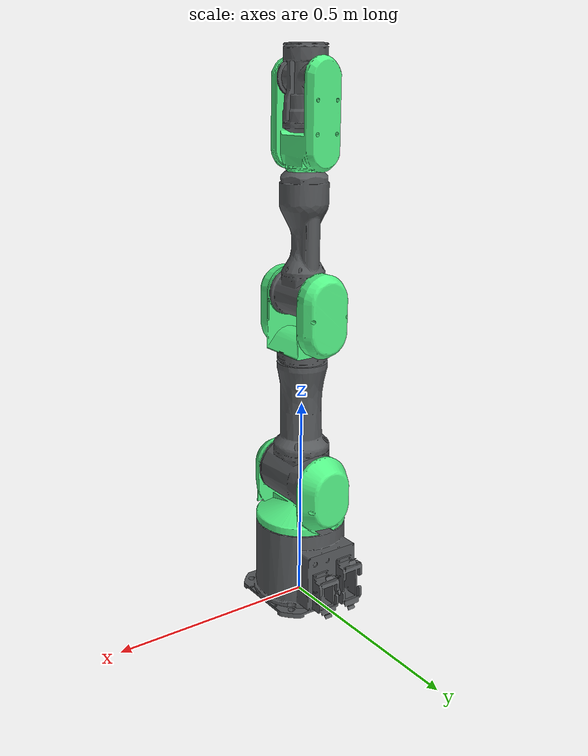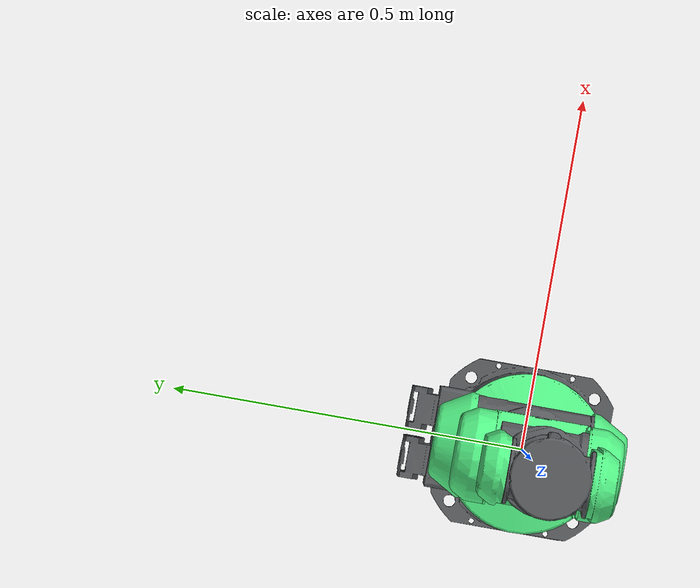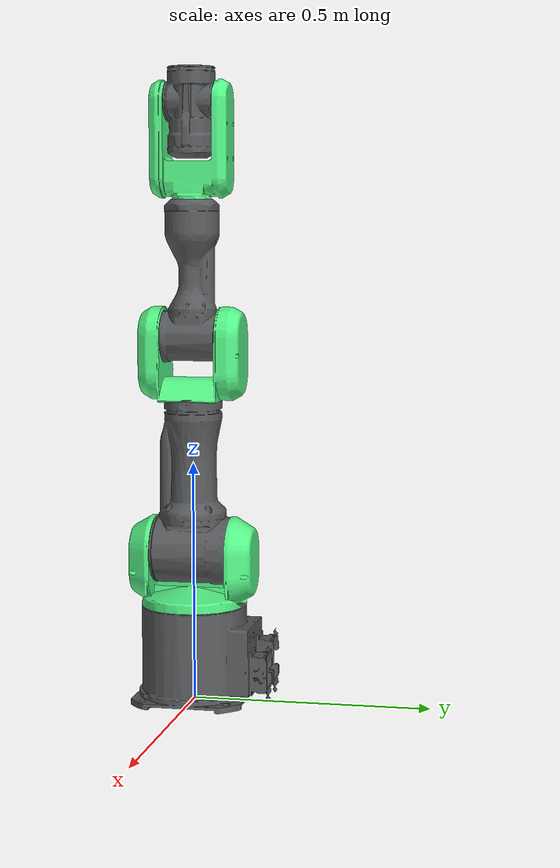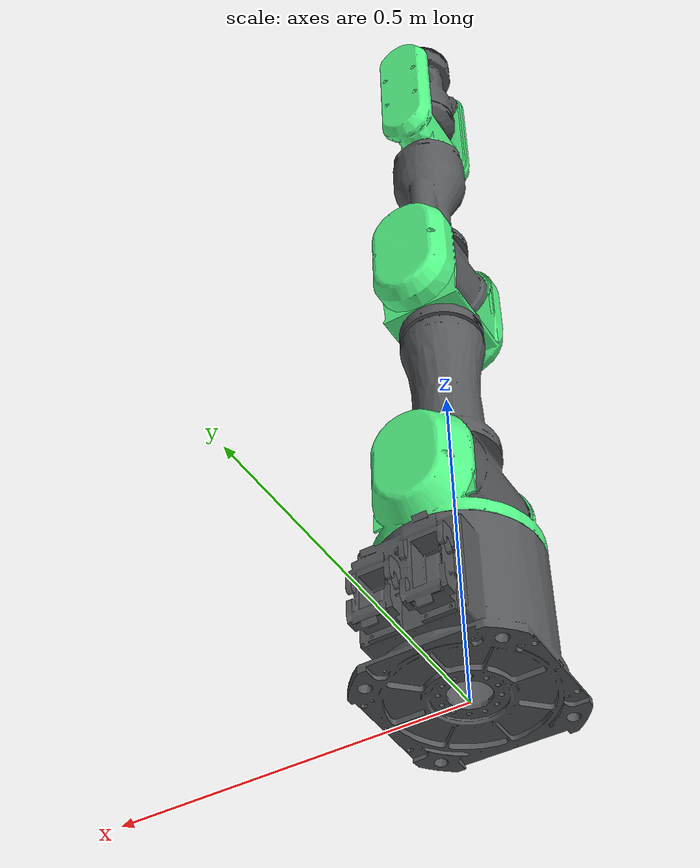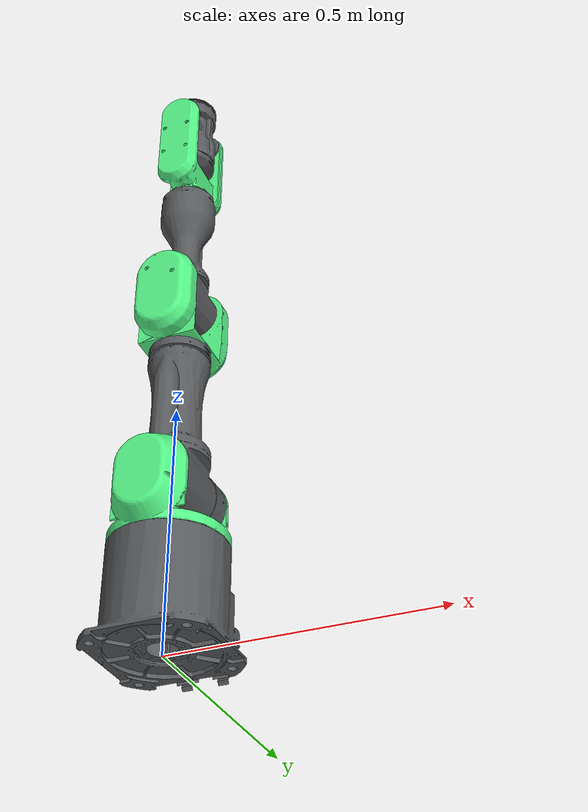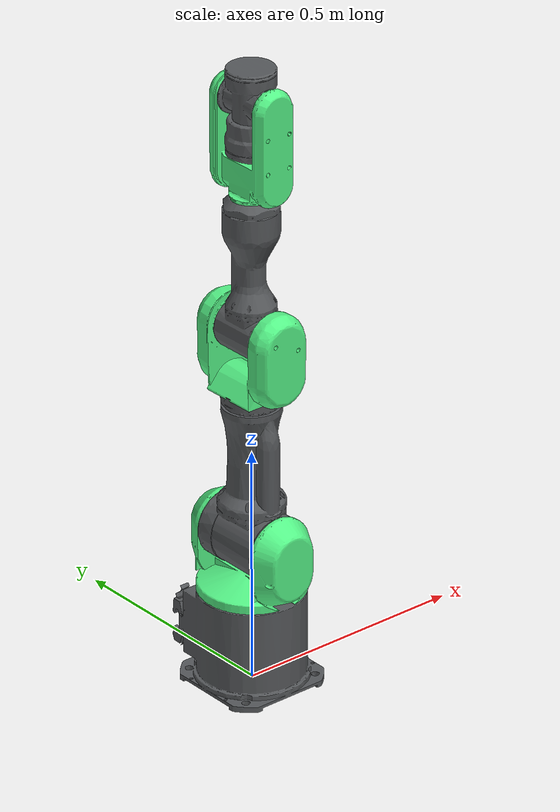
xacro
<?xml version="1.0" ?>

<robot name="pa10_csl"  xmlns:xacro="http://www.ros.org/wiki/xacro">

	<xacro:property name="arm_eps"            value="0.02" />
	<xacro:property name="joint_1_max_effort" value="39.0"/> <!-- NOT THE ACTUAL VALUE -->
	<xacro:property name="joint_2_max_effort" value="39.0"/>
	<xacro:property name="joint_3_max_effort" value="39.0"/>
	<xacro:property name="joint_4_max_effort" value="39.0"/>
	<xacro:property name="joint_5_max_effort" value="39.0"/>
	<xacro:property name="joint_6_max_effort" value="39.0"/>
	<xacro:property name="joint_7_max_effort" value="39.0"/>

	<!-- Import all Gazebo-customization elements, including Gazebo colors -->
  <xacro:include filename="$(find pa10_description)/urdf/pa10csl.gazebo" />
	<!-- Import Rviz colors -->
  <xacro:include filename="$(find pa10_description)/urdf/materials.xacro" />

	<!-- LINKS -->

	<link name="world"/>

	<link name="base_link">
		<visual>
			<origin rpy="0 0 3.14" xyz="0 0 0"/>
      <geometry>
        <mesh filename="package://pa10_description/pa10_stl/S1.stl" scale="1 1 1"/>
      </geometry>
      <material name="">
        <color rgba="0.34 0.35 0.36 1.0"/>
      </material>
    </visual>
		<collision>
      <origin rpy="0 0 3.14" xyz="0 0 0"/>
      <geometry>
        <mesh filename="package://pa10_description/pa10_stl_collision/S1_collision.stl" scale="1 1 1"/>
      </geometry>
    </collision>
    <inertial>
      <origin rpy="0 0 0" xyz="0 0 1"/>
      <mass value="1"/>
      <inertia ixx="1" ixy="0.0" ixz="0.0" iyy="1" iyz="0.0" izz="1"/>
    </inertial>
  </link>

	<link name="soldier_link_1">
    <visual>
      <origin rpy="0 0 0" xyz="0 0 0.117"/>
      <geometry>
        <mesh filename="package://pa10_description/pa10_stl/S2.stl" scale="1 1 1"/>
      </geometry>
      <material name="">
        <color rgba="0.33 0.96 0.53 1.5"/>
      </material>
    </visual>
		<collision>
      <origin rpy="0 0 0" xyz="0 0 0.117"/>
      <geometry>
        <mesh filename="package://pa10_description/pa10_stl_collision/S2_collision.stl" scale="1 1 1"/>
      </geometry>
    </collision>
    <inertial>
      <origin rpy="0 0 0" xyz="0 0 1"/>
      <mass value="1"/>
      <inertia ixx="1" ixy="0.0" ixz="0.0" iyy="1" iyz="0.0" izz="1"/>
    </inertial>
	</link>

	<link name="soldier_link_2">
    <visual>
      <origin rpy="-1.57079 0 3.14159" xyz="0 0 0"/>
      <geometry>
        <mesh filename="package://pa10_description/pa10_stl/S3.stl" scale="1 1 1"/>
      </geometry>
      <material name="">
        <color rgba="0.34 0.35 0.36 1.0"/>
      </material>
    </visual>
    <collision>
      <origin rpy="-1.57079 0 3.14159" xyz="0 0 0"/>
      <geometry>
        <mesh filename="package://pa10_description/pa10_stl_collision/S3_collision.stl" scale="1 1 1"/>
      </geometry>
    </collision>
    <inertial>
      <origin rpy="0 0 0" xyz="0 0 1"/>
      <mass value="1"/>
      <inertia ixx="1" ixy="0.0" ixz="0.0" iyy="1" iyz="0.0" izz="1"/>
    </inertial>
  </link>

	<link name="soldier_to_elbow_link"/>

	<link name="elbow_link_1">
    <visual>
      <origin rpy="0 0 0" xyz="0 0.0 0.133"/>
      <geometry>
        <mesh filename="package://pa10_description/pa10_stl/E1.stl" scale="1 1 1"/>
      </geometry>
      <material name="">
        <color rgba="0.33 0.96 0.53 1.5"/>
      </material>
    </visual>
    <collision>
      <origin rpy="0 0 0" xyz="0 0.0 0.133"/>
      <geometry>
        <mesh filename="package://pa10_description/pa10_stl_collision/E1_collision.stl" scale="1 1 1"/>
      </geometry>
    </collision>
    <inertial>
      <origin rpy="0 0 0" xyz="0 0 1"/>
      <mass value="1"/>
      <inertia ixx="1" ixy="0.0" ixz="0.0" iyy="1" iyz="0.0" izz="1"/>
    </inertial>
  </link>

  <link name="elbow_link_2">
    <visual>
      <origin rpy="1.57079 0 0" xyz="0 0.003 0"/>
      <geometry>
        <mesh filename="package://pa10_description/pa10_stl/E2.stl" scale="1 1 1"/>
      </geometry>
      <material name="">
        <color rgba="0.34 0.35 0.36 1.0"/>
      </material>
    </visual>
    <collision>
      <origin rpy="-1.57079 0 0" xyz="0 0.003 0"/>
      <geometry>
        <mesh filename="package://pa10_description/pa10_stl_collision/E2_collision.stl" scale="1 1 1"/>
      </geometry>
    </collision>
    <inertial>
      <origin rpy="0 0 0" xyz="0 0 1"/>
      <mass value="1"/>
      <inertia ixx="1" ixy="0.0" ixz="0.0" iyy="1" iyz="0.0" izz="1"/>
    </inertial>
  </link>

	<link name="wrist_link_1">
    <visual>
      <origin rpy="0 0 0" xyz="0 0 0.195"/>
      <geometry>
        <mesh filename="package://pa10_description/pa10_stl/W1.stl" scale="1 1 1"/>
      </geometry>
      <material name="">
        <color rgba="0.33 0.96 0.53 1.5"/>
      </material>
    </visual>
    <collision>
      <origin rpy="0 0 0" xyz="0 0 0.195"/>
      <geometry>
        <mesh filename="package://pa10_description/pa10_stl_collision/W1_collision.stl" scale="1 1 1"/>
      </geometry>
    </collision>
    <inertial>
      <origin rpy="0 0 0" xyz="0 0 1"/>
      <mass value="1"/>
      <inertia ixx="1" ixy="0.0" ixz="0.0" iyy="1" iyz="0.0" izz="1"/>
    </inertial>
  </link>

	<link name="wrist_link_2">
    <visual>
      <origin rpy="1.57079 0 0" xyz="0 0 0"/>
      <geometry>
        <mesh filename="package://pa10_description/pa10_stl/W2.stl"  scale="1 1 1"/>
      </geometry>
      <material name="">
        <color rgba="0.34 0.35 0.36 1.0"/>
      </material>
    </visual>
    <collision>
      <origin rpy="1.57079 0 0" xyz="0 0 0"/>
      <geometry>
        <mesh filename="package://pa10_description/pa10_stl_collision/W2_collision.stl"  scale="1 1 1"/>
      </geometry>
    </collision>
    <inertial>
      <origin rpy="0 0 0" xyz="0 0 1"/>
      <mass value="1"/>
      <inertia ixx="1" ixy="0.0" ixz="0.0" iyy="1" iyz="0.0" izz="1"/>
    </inertial>
  </link>

	<link name="wrist_link_3"/>

	<!--   JOINTS    -->

	<joint name="fixed" type="fixed">
    <parent link="world"/>
    <child link="base_link"/>
  </joint>

	<joint name="soldier_joint_1" type="revolute">
    <origin rpy="0 0 0" xyz="0 0 0.2"/>
    <parent link="base_link"/>
    <child link="soldier_link_1"/>
    <axis xyz="0 0 1"/>
    <limit effort="${joint_1_max_effort}" lower="-3.089" upper="3.089" velocity="1.0"/>
		<safety_controller k_position="20"
                       k_velocity="20"
                       soft_lower_limit="${-3.089 + arm_eps}"
                       soft_upper_limit="${ 3.089 - arm_eps}" />
  </joint>

	<joint name="soldier_joint_2" type="revolute">
    <origin rpy="-1.57079 0 0" xyz="0 0 0.117"/>
    <parent link="soldier_link_1"/>
    <child link="soldier_link_2"/>
    <axis xyz="0 0 1"/>
    <limit effort="${joint_2_max_effort}" lower="-1.64" upper="1.64" velocity="1.0"/>
		<safety_controller k_position="20"
                       k_velocity="20"
                       soft_lower_limit="${-1.64 + arm_eps}"
                       soft_upper_limit="${ 1.64 - arm_eps}" />

  </joint>

	<joint name="soldier_to_elbow_joint" type="fixed">
		<origin rpy="1.57079 0 0" xyz="0 0 0"/>
		<parent link="soldier_link_2"/>
    <child link="soldier_to_elbow_link"/>
	</joint>

	<joint name="elbow_joint_1" type="revolute">
    <origin rpy="0 0 0" xyz="0 0 0.317"/>
    <parent link="soldier_to_elbow_link"/>
    <child link="elbow_link_1"/>
    <axis xyz="0 0 1"/>
    <limit effort="${joint_3_max_effort}" lower="-3.036" upper="3.036" velocity="1.0"/>
		<safety_controller k_position="20"
                       k_velocity="20"
                       soft_lower_limit="${-3.036 + arm_eps}"
                       soft_upper_limit="${ 3.036 - arm_eps}" />
  </joint>

	<joint name="elbow_joint_2" type="revolute">
    <origin rpy="-1.57079  0 0" xyz="0 0 0.133"/>
    <parent link="elbow_link_1"/>
    <child link="elbow_link_2"/>
    <axis xyz="0 0 1"/>
    <limit effort="${joint_4_max_effort}" lower="-2.39" upper="2.39" velocity="1.0"/>
		<safety_controller k_position="20"
                       k_velocity="20"
                       soft_lower_limit="${-2.39 + arm_eps}"
                       soft_upper_limit="${ 2.39 - arm_eps}" />
  </joint>

	<joint name="wrist_joint_1" type="revolute">
    <origin rpy="1.57079 0 0" xyz="0 -0.285 0 "/>
    <parent link="elbow_link_2"/>
    <child link="wrist_link_1"/>
    <axis xyz="0 0 1"/>
    <limit effort="${joint_5_max_effort}" lower="-4.45" upper="4.45" velocity="1.0"/>
		<safety_controller k_position="20"
                       k_velocity="20"
                       soft_lower_limit="${-4.45 + arm_eps}"
                       soft_upper_limit="${ 4.45 - arm_eps}" />
  </joint>

	<joint name="wrist_joint_2" type="revolute">
    <origin rpy="-1.57079 0 0" xyz="0 0 0.195"/>
    <parent link="wrist_link_1"/>
    <child link="wrist_link_2"/>
    <axis xyz="0 0 1"/>
    <limit effort="${joint_6_max_effort}" lower="-2.878" upper="2.878" velocity="1.0"/>
		<safety_controller k_position="20"
                       k_velocity="20"
                       soft_lower_limit="${-2.878 + arm_eps}"
                       soft_upper_limit="${ 2.878 - arm_eps}" />
  </joint>

	<joint name="wrist_joint_3" type="revolute">
    <origin rpy="1.57079 0 0" xyz="0 -0.07 0"/>
    <parent link="wrist_link_2"/>
    <child link="wrist_link_3"/>
    <axis xyz="0 0 1"/>
    <limit effort="${joint_7_max_effort}" lower="-4.448" upper="4.448" velocity="1.0"/>
		<safety_controller k_position="20"
                       k_velocity="20"
                       soft_lower_limit="${-4.448 + arm_eps}"
                       soft_upper_limit="${ 4.448 - arm_eps}" />
  </joint>

</robot>

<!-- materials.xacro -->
<robot>

  <material name="black">
    <color rgba="0.0 0.0 0.0 1.0"/>
  </material>

  <material name="blue">
    <color rgba="0.0 0.0 0.8 1.0"/>
  </material>

  <material name="green">
    <color rgba="0.0 0.8 0.0 1.0"/>
  </material>

  <material name="grey">
    <color rgba="0.2 0.2 0.2 1.0"/>
  </material>

	 <material name="orange">
    <color rgba="${255/255} ${108/255} ${10/255} 1.0"/>
  </material>

  <material name="brown">
    <color rgba="${222/255} ${207/255} ${195/255} 1.0"/>
  </material>

  <material name="red">
    <color rgba="0.8 0.0 0.0 1.0"/>
  </material>

  <material name="white">
    <color rgba="1.0 1.0 1.0 1.0"/>
  </material>

</robot>
